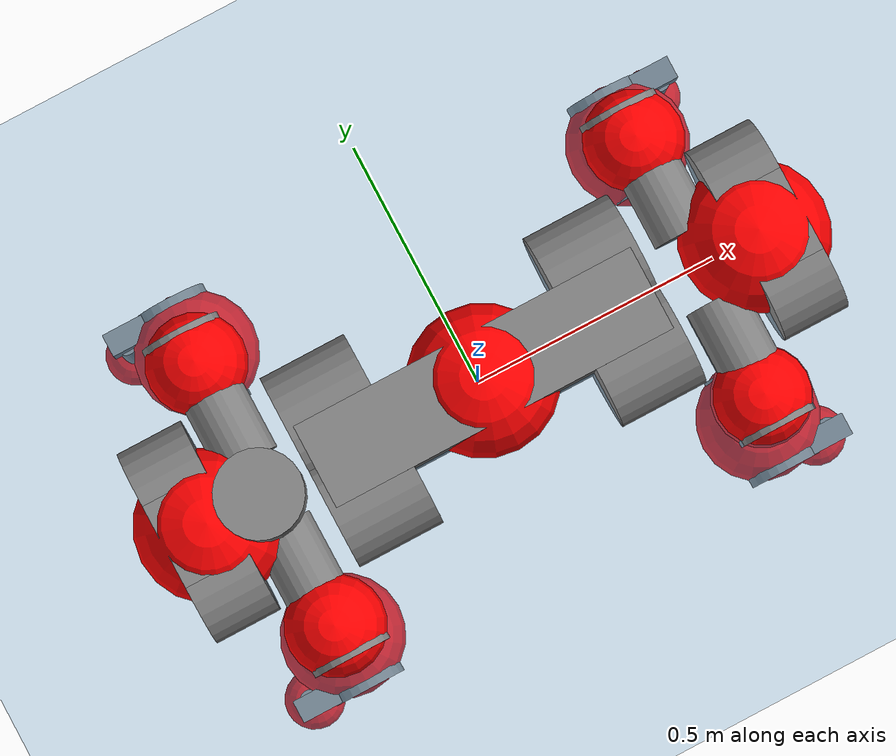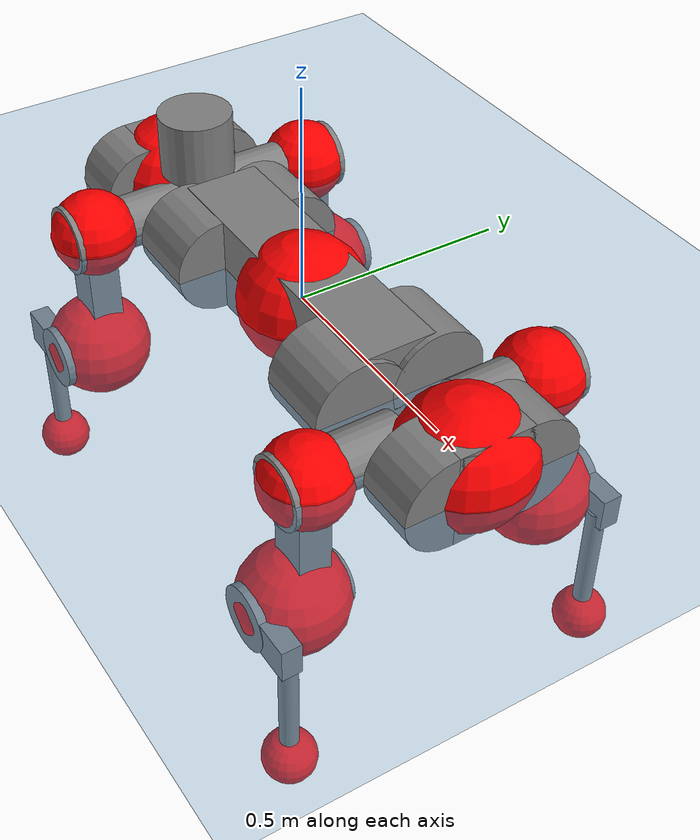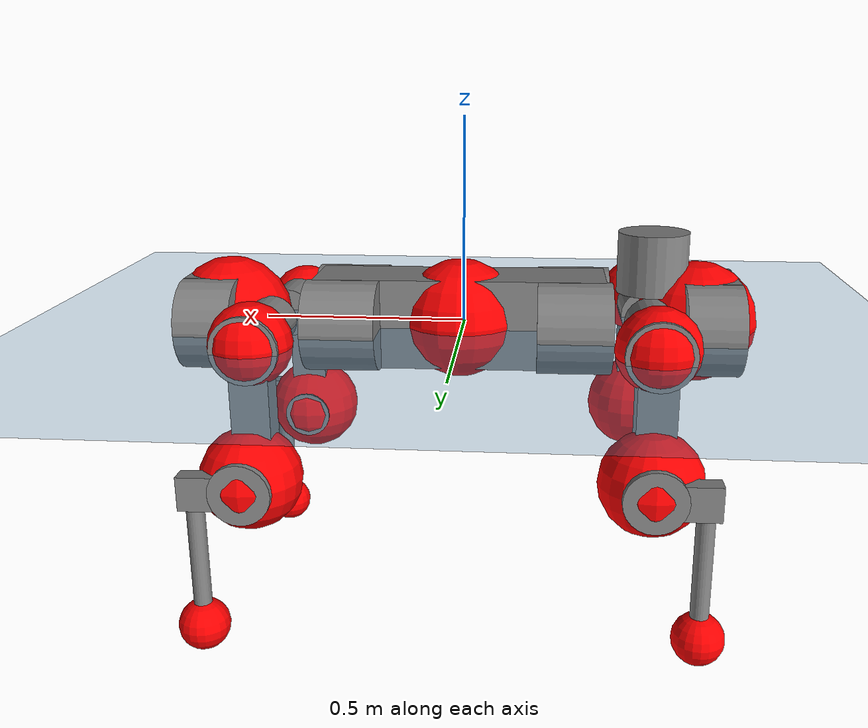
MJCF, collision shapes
<mujoco model="anymal_c">
  <compiler angle="radian" assetdir="assets" balanceinertia="true" inertiafromgeom="false"/>

  <option timestep="0.005" density="1.2" viscosity="2e-05"/>

  <size nkey="1"/>

  <visual>
    <quality shadowsize="8192"/>
    <map shadowclip="0.5"/>
  </visual>

  <default>
    <default class="/">
      <material specular="0" shininess="0.25"/>
      <geom contype="0" conaffinity="0" group="1" solref="-1000 -80"/>
      <site size="0.01 0.005 0.005" group="5"/>
      <general forcelimited="true" forcerange="-80 80" biastype="affine" gainprm="80" biasprm="0 -80 -2"/>
      <default class="anymal_c">
        <joint armature="0.01" damping="0.01" frictionloss="0.1"/>
        <default class="visual">
          <geom type="mesh" group="2"/>
          <default class="visual_zflip"/>
        </default>
        <default class="collision">
          <geom type="cylinder" group="3"/>
          <default class="foot">
            <geom size="0.03 0 0" type="sphere" condim="6" priority="1" friction="0.8 0.02 0.01" solimp="0.015 1 0.03"/>
          </default>
        </default>
      </default>
      <default class="reward_collision_sphere">
        <geom group="5" rgba="1 0 0 1"/>
      </default>
    </default>
  </default>

  <asset>
    <texture type="skybox" colorspace="auto" name="//unnamed_texture_0" builtin="gradient" rgb1="0.95 0.95 0.95" rgb2="0.95 0.95 0.95" width="100" height="600"/>
    <texture type="2d" colorspace="auto" name="texplane" builtin="checker" rgb1="0.345 0.575 0.748" rgb2="0.345 0.575 0.748" markrgb="1 1 1" width="512" height="512"/>
    <texture type="2d" colorspace="linear" name="base" file="base.png"/>
    <texture type="2d" colorspace="linear" name="top_shell" file="top_shell.png"/>
    <texture type="2d" colorspace="linear" name="bottom_shell" file="bottom_shell.png"/>
    <texture type="2d" colorspace="linear" name="remote" file="remote.png"/>
    <texture type="2d" colorspace="linear" name="hatch" file="hatch.png"/>
    <texture type="2d" colorspace="linear" name="handle" file="handle.png"/>
    <texture type="2d" colorspace="linear" name="face" file="face.png"/>
    <texture type="2d" colorspace="linear" name="battery" file="battery.png"/>
    <texture type="2d" colorspace="linear" name="lidar_cage" file="lidar_cage.png"/>
    <texture type="2d" colorspace="linear" name="depth_camera" file="depth_camera.png"/>
    <texture type="2d" colorspace="linear" name="wide_angle_camera" file="wide_angle_camera.png"/>
    <texture type="2d" colorspace="linear" name="lidar" file="lidar.png"/>
    <texture type="2d" colorspace="linear" name="drive" file="drive.png"/>
    <texture type="2d" colorspace="linear" name="hip_l" file="hip_l.png"/>
    <texture type="2d" colorspace="linear" name="shank_l" file="shank_l.png"/>
    <texture type="2d" colorspace="linear" name="foot" file="foot.png"/>
    <texture type="2d" colorspace="linear" name="thigh" file="thigh.png"/>
    <texture type="2d" colorspace="linear" name="shank_r" file="shank_r.png"/>
    <texture type="2d" colorspace="linear" name="hip_r" file="hip_r.png"/>
    <material name="MatPlane" class="/" texture="texplane" texuniform="true" texrepeat="2 2" specular="0.9" shininess="0.5"/>
    <material name="black_plastic" class="/" rgba="0.007 0.007 0.007 1"/>
    <material name="green" class="/" rgba="0.052 0.178 0.033 1"/>
    <material name="red" class="/" rgba="0.178 0.006 0.005 1"/>
    <material name="yellow" class="/" rgba="0.178 0.119 0.006 1"/>
    <material name="lwl" class="/" rgba="0.8 0.8 0.8 1"/>
    <material name="base" class="/" texture="base"/>
    <material name="top_shell" class="/" texture="top_shell"/>
    <material name="bottom_shell" class="/" texture="bottom_shell"/>
    <material name="hip_l" class="/" texture="hip_l"/>
    <material name="thigh" class="/" texture="thigh"/>
    <material name="shank_l" class="/" texture="shank_l"/>
    <material name="foot" class="/" texture="foot"/>
    <material name="hip_r" class="/" texture="hip_r"/>
    <material name="shank" class="/" texture="shank_r"/>
    <material name="hatch" class="/" texture="hatch"/>
    <material name="remote" class="/" texture="remote"/>
    <material name="handle" class="/" texture="handle"/>
    <material name="face" class="/" texture="face"/>
    <material name="depth_camera" class="/" texture="depth_camera"/>
    <material name="wide_angle_camera" class="/" texture="wide_angle_camera"/>
    <material name="battery" class="/" texture="battery"/>
    <material name="lidar_cage" class="/" texture="lidar_cage"/>
    <material name="lidar" class="/" texture="lidar"/>
    <material name="drive" class="/" texture="drive"/>
    <mesh name="base_0" class="/" file="base_0.obj"/>
    <mesh name="base_1" class="/" file="base_1.obj"/>
    <mesh name="base_2" class="/" file="base_2.obj"/>
    <mesh name="base_3" class="/" file="base_3.obj"/>
    <mesh name="base_4" class="/" file="base_4.obj"/>
    <mesh name="base_5" class="/" file="base_5.obj"/>
    <mesh name="top_shell" class="/" file="top_shell.obj"/>
    <mesh name="bottom_shell" class="/" file="bottom_shell.obj"/>
    <mesh name="remote" class="/" file="remote.obj"/>
    <mesh name="handle" class="/" file="handle.obj"/>
    <mesh name="face" class="/" file="face.obj"/>
    <mesh name="wide_angle_camera" class="/" file="wide_angle_camera.obj"/>
    <mesh name="depth_camera" class="/" file="depth_camera.obj"/>
    <mesh name="battery" class="/" file="battery.obj"/>
    <mesh name="lidar_cage" class="/" file="lidar_cage.obj"/>
    <mesh name="lidar" class="/" file="lidar.obj"/>
    <mesh name="drive" class="/" file="drive.obj"/>
    <mesh name="hip_l" class="/" file="hip_l.obj"/>
    <mesh name="thigh" class="/" file="thigh.obj"/>
    <mesh name="shank_l" class="/" file="shank_l.obj"/>
    <mesh name="foot" class="/" file="foot.obj"/>
    <mesh name="hip_r" class="/" file="hip_r.obj"/>
    <mesh name="hatch" class="/" file="hatch.obj"/>
    <mesh name="shank_r" class="/" file="shank_r.obj"/>
  </asset>

  <worldbody>
    <geom name="floor" class="/" size="100 100 0.125" type="plane" group="0" material="MatPlane"/>
    <light name="toplight_shadow" class="/" pos="0 0 5" dir="0.0990148 0.0990148 -0.990148" type="directional" ambient="0.04 0.04 0.04" diffuse="0.55 0.55 0.55" specular="0.12 0.12 0.12"/>
    <light name="toplight_fill" class="/" pos="0 0 5" dir="0.0990148 0.0990148 -0.990148" type="directional" castshadow="false" ambient="0.04 0.04 0.04" diffuse="0.3 0.3 0.3" specular="0.08 0.08 0.08"/>
    <body name="trunk" childclass="anymal_c" pos="0.00939662 -0.00167441 0.00680834" quat="0.999991 0.00313421 0.00246413 0.001284">
      <inertial pos="0.0102205 -0.00730842 0.0530904" quat="0.47998 0.469469 0.53871 0.50893" mass="31.3622" diaginertia="1.70571 2.15159 0.255566"/>
      <joint name="//unnamed_joint_0" type="free" armature="0" damping="0" frictionloss="0"/>
      <geom name="//unnamed_geom_1" class="visual" material="green" mesh="base_0"/>
      <geom name="//unnamed_geom_2" class="visual" material="yellow" mesh="base_1"/>
      <geom name="//unnamed_geom_3" class="visual" material="red" mesh="base_2"/>
      <geom name="//unnamed_geom_4" class="visual" material="black_plastic" mesh="base_3"/>
      <geom name="//unnamed_geom_5" class="visual" material="lwl" mesh="base_4"/>
      <geom name="//unnamed_geom_6" class="visual" material="base" mesh="base_5"/>
      <geom name="trunk_1" class="collision" size="0.355758 0.0858726 0.110408" type="box"/>
      <geom name="trunk_2" class="collision" size="0.110408 0.0889395" pos="0.280428 0.0905865 0" quat="0.707107 0 0.707107 0"/>
      <geom name="trunk_3" class="collision" size="0.110408 0.0889395" pos="-0.280428 0.0905865 0" quat="0.707107 0 0.707107 0"/>
      <geom name="trunk_4" class="collision" size="0.110408 0.0889395" pos="0.280428 -0.0905865 0" quat="0.707107 0 0.707107 0"/>
      <geom name="trunk_5" class="collision" size="0.110408 0.0889395" pos="-0.280428 -0.0905865 0" quat="0.707107 0 0.707107 0"/>
      <geom name="//unnamed_geom_12" class="visual" material="top_shell" mesh="top_shell"/>
      <geom name="//unnamed_geom_13" class="visual" material="bottom_shell" mesh="bottom_shell"/>
      <geom name="//unnamed_geom_14" class="visual" material="remote" mesh="remote"/>
      <geom name="//unnamed_geom_15" class="visual" material="handle" mesh="handle"/>
      <geom name="//unnamed_geom_16" class="visual" pos="0.534425 0 0" quat="1 0 0 0" material="face" mesh="face"/>
      <geom name="trunk_6" class="collision" size="0.0674714 0.0858726 0.110408" pos="0.605338 0 0" type="box"/>
      <geom name="//unnamed_geom_18" class="collision" size="0.110408 0.0674714" pos="0.605338 0.0905865 0" quat="0.707107 0 0.707107 0"/>
      <geom name="//unnamed_geom_19" class="collision" size="0.110408 0.0674714" pos="0.605338 -0.0905865 0" quat="0.707107 0 0.707107 0"/>
      <geom name="//unnamed_geom_20" class="visual" pos="0.595208 0 -0.0305648" quat="0.965926 0 0.258819 0" material="depth_camera" mesh="depth_camera"/>
      <geom name="//unnamed_geom_21" class="visual" pos="0.661423 0 0.0164197" material="wide_angle_camera" mesh="wide_angle_camera"/>
      <geom name="//unnamed_geom_22" class="visual_zflip" pos="-0.534425 0 0" quat="0 0 0 1" material="face" mesh="face"/>
      <geom name="trunk_7" class="collision" size="0.0674714 0.0858726 0.110408" pos="-0.605338 0 0" quat="0 0 0 1" type="box"/>
      <geom name="//unnamed_geom_24" class="collision" size="0.110408 0.0674714" pos="-0.605338 -0.0905865 0" quat="0 -0.707107 0 0.707107"/>
      <geom name="//unnamed_geom_25" class="collision" size="0.110408 0.0674714" pos="-0.605338 0.0905865 0" quat="0 -0.707107 0 0.707107"/>
      <geom name="//unnamed_geom_26" class="visual" pos="-0.595208 0 -0.0305648" quat="0 -0.258819 0 0.965926" material="depth_camera" mesh="depth_camera"/>
      <geom name="//unnamed_geom_27" class="visual_zflip" pos="-0.661423 0 0.0164197" quat="0 0 0 1" material="wide_angle_camera" mesh="wide_angle_camera"/>
      <geom name="//unnamed_geom_28" class="visual" material="battery" mesh="battery"/>
      <geom name="//unnamed_geom_29" class="visual" pos="0 0.099001 0.033326" quat="0.683013 -0.183013 0.183013 0.683013" material="depth_camera" mesh="depth_camera"/>
      <geom name="//unnamed_geom_30" class="visual" pos="0 -0.099001 0.033326" quat="0.683013 0.183013 0.183013 -0.683013" material="depth_camera" mesh="depth_camera"/>
      <geom name="//unnamed_geom_31" class="visual" pos="-0.469314 0 0.0806176" quat="1 0 0 0" material="lidar_cage" mesh="lidar_cage"/>
      <geom name="trunk_8" class="collision" size="0.0858726 0.0736051" pos="-0.469314 0 0.146428"/>
      <geom name="//unnamed_geom_33" class="visual" pos="-0.469314 1.87389e-06 0.15597" quat="0.707107 0 0 -0.707107" material="lidar" mesh="lidar"/>
      <geom name="//unnamed_geom_34" class="visual" pos="0.386668 0.134516 3.40267e-09" quat="0.258819 0.965926 0 0" material="drive" mesh="drive"/>
      <geom name="//unnamed_geom_35" class="visual" pos="0.386668 -0.134516 -3.40267e-09" quat="0.258819 -0.965926 0 0" material="drive" mesh="drive"/>
      <geom name="//unnamed_geom_36" class="visual" pos="-0.386668 0.134516 -3.40267e-09" quat="0 0 0.965926 -0.258819" material="drive" mesh="drive"/>
      <geom name="//unnamed_geom_37" class="visual" pos="-0.386668 -0.134516 3.40267e-09" quat="0 0 -0.965926 -0.258819" material="drive" mesh="drive"/>
      <geom name="//unnamed_geom_38" class="visual" pos="0.149562 0 0.0800692" quat="1 0 0 0" material="hatch" mesh="hatch"/>
      <geom name="//unnamed_geom_39" class="reward_collision_sphere" size="0.14721"/>
      <geom name="//unnamed_geom_40" class="reward_collision_sphere" size="0.14721" pos="0.580196 0 0"/>
      <geom name="//unnamed_geom_41" class="reward_collision_sphere" size="0.14721" pos="-0.580196 0 0"/>
      <site name="imu" pos="0.283718 0.0840309 0.0754611" size="0.0122675"/>
      <camera name="track" pos="0 -2.58819 0" quat="0.707107 0.707107 0 0" mode="trackcom"/>
      <camera name="ego_camera" pos="0.580196 0 -0.0438735" quat="-0.5 -0.5 0.5 0.5"/>
      <body name="LF_HIP" pos="0.38717 0.134413 0.00510222" quat="0.252114 0.967696 -0.000598618 -0.00148409">
        <inertial pos="0.0800352 -0.0198331 -0.00546549" quat="-0.139053 0.708985 -0.180521 0.667395" mass="4.28546" diaginertia="0.0176242 0.0152163 0.00400349"/>
        <joint name="LF_HAA" pos="0 0 0" axis="0.999325 0.0177157 -0.0321823" range="-0.970789 0.452397" armature="0.00572308" damping="0.0104865" frictionloss="0.13389"/>
        <geom name="//unnamed_geom_42" class="visual" pos="0 0.000200164 -3.28767e-05" quat="0.258819 -0.965926 0 0" material="hip_l" mesh="hip_l"/>
        <geom name="//unnamed_geom_43" class="visual" pos="0.0772305 -0.0935739 -0.0525659" quat="0.183013 -0.683013 0.683013 0.183013" material="drive" mesh="drive"/>
        <geom name="//unnamed_geom_44" class="collision" size="0.0613376 0.0858726" pos="0.0772305 -0.0154771 -0.00757367" quat="-0.353553 -0.612372 0.612372 -0.353553"/>
        <body name="LF_THIGH" pos="0.077281 -0.0911103 -0.043036" quat="0.183179 -0.682672 0.683247 0.183245">
          <inertial pos="0.0396766 0.0127353 -0.254792" quat="0.99214 0.00595689 -0.0963093 0.0796698" mass="5.82604" diaginertia="0.104885 0.118406 0.00643754"/>
          <joint name="LF_HFE" pos="0 0 0" axis="0.99993 -0.00756419 0.00906814" range="-3.13053 2.85944" armature="0.0169384" damping="0.0796556" frictionloss="0.120444"/>
          <geom name="//unnamed_geom_45" class="visual" pos="-9.48984e-05 -1.49538e-07 0" quat="0.707107 0 0 -0.707107" material="thigh" mesh="thigh"/>
          <geom name="//unnamed_geom_46" class="collision" size="0.0797389 0.0490701" pos="0.051573 0 0" quat="0.5 0.5 -0.5 -0.5"/>
          <geom name="//unnamed_geom_47" class="collision" size="0.0460032 0.0368026 0.173357" pos="0.0386797 0 -0.154999" quat="0.707107 0 0 -0.707107" type="box"/>
          <geom name="//unnamed_geom_48" class="visual" pos="0.129319 0 -0.312599" quat="1 0 0 0" material="drive" mesh="drive"/>
          <geom name="//unnamed_geom_49" class="collision" size="0.0613376 0.0858726" pos="0.0390665 0 -0.312599" quat="0.707107 0 0.707107 0"/>
          <geom name="//unnamed_geom_50" class="reward_collision_sphere" size="0.0981402" pos="0.0322331 0 0"/>
          <body name="LF_SHANK" pos="0.114525 -0.0134631 -0.321665" quat="1 0.000357267 8.53372e-05 0.000381302">
            <inertial pos="0.0110937 -0.0718542 -0.0974042" quat="0.993442 -0.110898 -0.00380211 -0.0275851" mass="0.924232" diaginertia="0.0324172 0.0351546 0.00182126"/>
            <joint name="LF_KFE" pos="0 0 0" axis="0.999904 -0.0134889 -0.00328574" stiffness="0.0699803" range="-3.31626 3.3757" armature="0.0130438" damping="0.0215979" frictionloss="0.131"/>
            <geom name="//unnamed_geom_51" class="visual" pos="-3.09443e-05 -0.000164997 0" quat="0.707107 0 0 -0.707107" material="shank_l" mesh="shank_l"/>
            <geom name="LF_kfe_act" class="collision" size="0.0736051 0.024535" pos="0.0257865 0 0" quat="0.5 0.5 -0.5 -0.5"/>
            <geom name="//unnamed_geom_53" class="collision" size="0.070537 0.0414029 0.0233083" pos="0.0257865 -0.0744091 0" quat="0.5 0.5 -0.5 -0.5" type="box"/>
            <geom name="//unnamed_geom_54" class="visual" pos="0.0168257 -0.113869 -0.370699" quat="0.382683 0 0 -0.92388" material="foot" mesh="foot"/>
            <geom name="LF_calf" class="collision" size="0.0214682 0.173281" pos="0.0168257 -0.113816 -0.185349" quat="0.707107 0 0 -0.707107"/>
            <geom name="LF_foot" class="foot" size="0.0550092" pos="0.0168257 -0.113816 -0.34602" quat="0.707107 0 0 -0.707107"/>
            <geom name="//unnamed_geom_57" class="reward_collision_sphere" size="0.122675" pos="-0.0644662 0 0"/>
            <geom name="//unnamed_geom_58" class="reward_collision_sphere" size="0.0613376" pos="0.0168257 -0.113816 -0.34602"/>
            <site name="LF_foot" class="foot" pos="0.0168257 -0.113816 -0.34602" quat="0.707107 0 0 -0.707107" size="0.0122675"/>
          </body>
        </body>
      </body>
      <body name="RF_HIP" pos="0.380158 -0.141504 -0.013074" quat="0.25879 -0.965934 1.7937e-05 3.03699e-05">
        <inertial pos="0.0768105 0.0287485 -0.0085756" quat="0.133152 0.631854 0.127832 0.752788" mass="4.21739" diaginertia="0.0189545 0.0138533 0.00423256"/>
        <joint name="RF_HAA" pos="0 0 0" axis="0.999991 0.0012405 -0.00407936" range="-0.684033 0.712895" armature="0.0125035" damping="0.0129446" frictionloss="0.0942697"/>
        <geom name="//unnamed_geom_59" class="visual" pos="0 -0.000200162 -3.28766e-05" quat="0.258819 0.965926 0 0" material="hip_r" mesh="hip_r"/>
        <geom name="//unnamed_geom_60" class="visual" pos="0.0772305 0.0935739 -0.0525659" quat="0.183013 0.683013 0.683013 -0.183013" material="drive" mesh="drive"/>
        <geom name="//unnamed_geom_61" class="collision" size="0.0613376 0.0858726" pos="0.0772305 0.0154771 -0.00757367" quat="-0.353553 0.612372 0.612372 0.353553"/>
        <body name="RF_THIGH" pos="0.0708576 0.0931877 -0.0354711" quat="0.183401 0.684116 0.682244 -0.181364">
          <inertial pos="0.0387955 -0.000307727 -0.256113" quat="0.996226 0.0306517 -0.0777651 0.0233964" mass="4.49134" diaginertia="0.0981072 0.09121 0.00558533"/>
          <joint name="RF_HFE" pos="0 0 0" axis="0.999869 0.0121346 0.0106796" stiffness="0.0165428" range="-2.87874 2.92986" armature="0.0182174" damping="0.0119059" frictionloss="0.104484"/>
          <geom name="//unnamed_geom_62" class="visual" pos="-9.48984e-05 -1.49538e-07 0" quat="0.707107 0 0 -0.707107" material="thigh" mesh="thigh"/>
          <geom name="//unnamed_geom_63" class="collision" size="0.0797389 0.0490701" pos="0.051573 0 0" quat="0.5 0.5 0.5 0.5"/>
          <geom name="//unnamed_geom_64" class="collision" size="0.0460032 0.0368026 0.173357" pos="0.0386797 0 -0.154999" quat="0.707107 0 0 0.707107" type="box"/>
          <geom name="//unnamed_geom_65" class="visual" pos="0.129319 0 -0.312599" quat="1 0 0 0" material="drive" mesh="drive"/>
          <geom name="//unnamed_geom_66" class="collision" size="0.0613376 0.0858726" pos="0.0390665 0 -0.312599" quat="0.707107 0 0.707107 0"/>
          <geom name="//unnamed_geom_67" class="reward_collision_sphere" size="0.0981402" pos="0.0322331 0 0"/>
          <body name="RF_SHANK" pos="0.127757 -0.000555716 -0.312597" quat="1 -8.08935e-05 5.55314e-05 -8.66465e-05">
            <inertial pos="0.00461098 0.0799476 -0.103461" quat="0.988699 0.149374 0.00208112 0.0125268" mass="1.4549" diaginertia="0.0399774 0.0326234 0.00243603"/>
            <joint name="RF_KFE" pos="0 0 0" axis="0.999776 0.0208892 0.0032983" range="-3.11773 3.2821" armature="0.00631771" damping="0.00684836" frictionloss="0.124672"/>
            <geom name="//unnamed_geom_68" class="visual" pos="-3.09441e-05 0.000164996 0" quat="0.707107 0 0 0.707107" material="shank" mesh="shank_r"/>
            <geom name="RF_kfe_act" class="collision" size="0.0736051 0.024535" pos="0.0257865 0 0" quat="0.5 0.5 0.5 0.5"/>
            <geom name="//unnamed_geom_70" class="collision" size="0.070537 0.0414029 0.0233083" pos="0.0257865 0.0744091 0" quat="0.5 0.5 0.5 0.5" type="box"/>
            <geom name="//unnamed_geom_71" class="visual" pos="0.0168257 0.113869 -0.370699" quat="0.382683 0 0 0.92388" material="foot" mesh="foot"/>
            <geom name="RF_calf" class="collision" size="0.0214682 0.173281" pos="0.0168257 0.113816 -0.185349" quat="0.707107 0 0 0.707107"/>
            <geom name="RF_foot" class="foot" size="0.0304195" pos="0.0168257 0.113816 -0.34602" quat="0.707107 0 0 0.707107"/>
            <geom name="//unnamed_geom_74" class="reward_collision_sphere" size="0.122675" pos="-0.0644662 0 0"/>
            <geom name="//unnamed_geom_75" class="reward_collision_sphere" size="0.0613376" pos="0.0168257 0.113816 -0.34602"/>
            <site name="RF_foot" class="foot" pos="0.0168257 0.113816 -0.34602" quat="0.707107 0 0 0.707107" size="0.0122675"/>
          </body>
        </body>
      </body>
      <body name="LH_HIP" pos="-0.384279 0.141059 0.0126705" quat="-0.00012508 -0.000357696 0.965759 -0.25944">
        <inertial pos="0.0742809 0.0202791 0.00333133" quat="0.137795 0.683268 0.123676 0.706301" mass="4.4035" diaginertia="0.0181338 0.0201505 0.00527216"/>
        <joint name="LH_HAA" pos="0 0 0" axis="0.999995 -0.00139109 0.00288902" range="-0.775373 0.47358" armature="0.0120229" damping="0.0484682" frictionloss="0.0472346"/>
        <geom name="//unnamed_geom_76" class="visual" pos="0 -0.000200162 -3.28766e-05" quat="-0.258819 -0.965926 0 0" material="hip_r" mesh="hip_r"/>
        <geom name="//unnamed_geom_77" class="visual" pos="0.0772305 0.0935739 -0.0525659" quat="0.183013 0.683013 0.683013 -0.183013" material="drive" mesh="drive"/>
        <geom name="//unnamed_geom_78" class="collision" size="0.0613376 0.0858726" pos="0.0772305 0.0154771 -0.00757367" quat="-0.353553 0.612372 0.612372 0.353553"/>
        <body name="LH_THIGH" pos="0.0768406 0.0973256 -0.0474281" quat="0.183059 0.683199 0.682794 -0.183087">
          <inertial pos="0.0517148 -0.00201016 -0.254903" quat="0.996913 0.0172036 -0.026882 0.0717313" mass="5.41785" diaginertia="0.116475 0.101449 0.00713373"/>
          <joint name="LH_HFE" pos="0 0 0" axis="0.998218 0.0137924 -0.0580564" stiffness="0.0221311" range="-2.89531 3.19" armature="0.00912456" damping="0" frictionloss="0.117207"/>
          <geom name="//unnamed_geom_79" class="visual" pos="-9.48984e-05 -1.49538e-07 0" quat="0.707107 0 0 -0.707107" material="thigh" mesh="thigh"/>
          <geom name="//unnamed_geom_80" class="collision" size="0.0797389 0.0490701" pos="0.051573 0 0" quat="0.5 0.5 -0.5 -0.5"/>
          <geom name="//unnamed_geom_81" class="collision" size="0.0460032 0.0368026 0.173357" pos="0.0386797 0 -0.154999" quat="0.707107 0 0 -0.707107" type="box"/>
          <geom name="//unnamed_geom_82" class="visual" pos="0.129319 0 -0.312599" quat="1 0 0 0" material="drive" mesh="drive"/>
          <geom name="//unnamed_geom_83" class="collision" size="0.0613376 0.0858726" pos="0.0390665 0 -0.312599" quat="0.707107 0 0.707107 0"/>
          <geom name="//unnamed_geom_84" class="reward_collision_sphere" size="0.0981402" pos="0.0322331 0 0"/>
          <body name="LH_SHANK" pos="0.13733 -0.00584472 -0.302727" quat="1 -2.05902e-05 -6.52227e-05 3.46506e-05">
            <inertial pos="-0.000505692 0.0872491 -0.0972307" quat="0.99177 0.107577 -0.0466492 0.0514218" mass="1.23877" diaginertia="0.0361807 0.0317163 0.00191103"/>
            <joint name="LH_KFE" pos="0 0 0" axis="0.999391 0.01293 -0.0324166" stiffness="0.0734523" range="-3.23301 3.12912" armature="0.0106891" damping="0.00403854" frictionloss="0.0750725"/>
            <geom name="//unnamed_geom_85" class="visual" pos="-3.09441e-05 0.000164996 0" quat="-0.707107 0 0 -0.707107" material="shank" mesh="shank_r"/>
            <geom name="LH_kfe_act" class="collision" size="0.0736051 0.024535" pos="0.0257865 0 0" quat="0.5 0.5 -0.5 -0.5"/>
            <geom name="//unnamed_geom_87" class="collision" size="0.070537 0.0414029 0.0233083" pos="0.0257865 0.0744091 0" quat="0.5 0.5 -0.5 -0.5" type="box"/>
            <geom name="//unnamed_geom_88" class="visual" pos="0.0168257 0.113869 -0.370699" quat="-0.382683 0 0 -0.92388" material="foot" mesh="foot"/>
            <geom name="LH_calf" class="collision" size="0.0214682 0.173281" pos="0.0168257 0.113816 -0.185349" quat="0.707107 0 0 -0.707107"/>
            <geom name="LH_foot" class="foot" size="0.0296712" pos="0.0168257 0.113816 -0.34602" quat="0.707107 0 0 -0.707107"/>
            <geom name="//unnamed_geom_91" class="reward_collision_sphere" size="0.122675" pos="-0.0644662 0 0"/>
            <geom name="//unnamed_geom_92" class="reward_collision_sphere" size="0.0613376" pos="0.0168257 0.113816 -0.34602"/>
            <site name="LH_foot" class="foot" pos="0.0168257 0.113816 -0.34602" quat="0.707107 0 0 -0.707107" size="0.0122675"/>
          </body>
        </body>
      </body>
      <body name="RH_HIP" pos="-0.387218 -0.130513 -0.00311387" quat="-0.000125685 0.00210335 -0.965538 -0.260252">
        <inertial pos="0.073733 -0.0318894 0.00026372" quat="-0.12721 0.710036 -0.134597 0.679375" mass="5.5819" diaginertia="0.0251715 0.0216312 0.00619381"/>
        <joint name="RH_HAA" pos="0 0 0" axis="0.999756 0.0204037 0.00844096" stiffness="0.00744032" range="-0.822562 0.70482" armature="0.016408" damping="0.063719" frictionloss="0.0924551"/>
        <geom name="//unnamed_geom_93" class="visual" pos="0 0.000200164 -3.28767e-05" quat="-0.258819 0.965926 0 0" material="hip_l" mesh="hip_l"/>
        <geom name="//unnamed_geom_94" class="visual" pos="0.0772305 -0.0935739 -0.0525659" quat="-0.183013 0.683013 -0.683013 -0.183013" material="drive" mesh="drive"/>
        <geom name="//unnamed_geom_95" class="collision" size="0.0613376 0.0858726" pos="0.0772305 -0.0154771 -0.00757367" quat="0.353553 0.612372 -0.612372 0.353553"/>
        <body name="RH_THIGH" pos="0.0747567 -0.0969477 -0.0589748" quat="-0.183585 0.682968 -0.682772 -0.183505">
          <inertial pos="0.047938 -0.00939614 -0.269748" quat="0.993697 -0.00667587 -0.0763605 0.0817965" mass="7.32023" diaginertia="0.113044 0.124666 0.00653666"/>
          <joint name="RH_HFE" pos="0 0 0" axis="0.999686 0.0185531 0.0168452" range="-2.87948 2.89618" armature="0.0121226" damping="0.000356285" frictionloss="0.190375"/>
          <geom name="//unnamed_geom_96" class="visual" pos="-9.48984e-05 -1.49538e-07 0" quat="0.707107 0 0 -0.707107" material="thigh" mesh="thigh"/>
          <geom name="//unnamed_geom_97" class="collision" size="0.0797389 0.0490701" pos="0.051573 0 0" quat="0.5 0.5 0.5 0.5"/>
          <geom name="//unnamed_geom_98" class="collision" size="0.0460032 0.0368026 0.173357" pos="0.0386797 0 -0.154999" quat="0.707107 0 0 0.707107" type="box"/>
          <geom name="//unnamed_geom_99" class="visual" pos="0.129319 0 -0.312599" quat="1 0 0 0" material="drive" mesh="drive"/>
          <geom name="//unnamed_geom_100" class="collision" size="0.0613376 0.0858726" pos="0.0390665 0 -0.312599" quat="0.707107 0 0.707107 0"/>
          <geom name="//unnamed_geom_101" class="reward_collision_sphere" size="0.0981402" pos="0.0322331 0 0"/>
          <body name="RH_SHANK" pos="0.116012 -0.00190416 -0.313419" quat="0.999999 -0.000913894 -4.8163e-05 -0.000441184">
            <inertial pos="0.00228663 -0.0793951 -0.0899382" quat="0.992453 -0.120565 0.00586553 -0.0216148" mass="1.3558" diaginertia="0.0416178 0.0375286 0.00196716"/>
            <joint name="RH_KFE" pos="0 0 0" axis="0.99933 0.0318117 0.0180727" stiffness="0.0367064" range="-3.10725 2.98615" armature="0.0158295" damping="0.0717272" frictionloss="0.117158"/>
            <geom name="//unnamed_geom_102" class="visual" pos="-3.09443e-05 -0.000164997 0" quat="0.707107 0 0 -0.707107" material="shank_l" mesh="shank_l"/>
            <geom name="RH_kfe_act" class="collision" size="0.0736051 0.024535" pos="0.0257865 0 0" quat="0.5 0.5 0.5 0.5"/>
            <geom name="//unnamed_geom_104" class="collision" size="0.070537 0.0414029 0.0233083" pos="0.0257865 -0.0744091 0" quat="0.5 0.5 0.5 0.5" type="box"/>
            <geom name="//unnamed_geom_105" class="visual" pos="0.0168257 -0.113869 -0.370699" quat="0.382683 0 0 -0.92388" material="foot" mesh="foot"/>
            <geom name="RH_calf" class="collision" size="0.0214682 0.173281" pos="0.0168257 -0.113816 -0.185349" quat="0.707107 0 0 0.707107"/>
            <geom name="RH_foot" class="foot" size="0.040367" pos="0.0168257 -0.113816 -0.34602" quat="0.707107 0 0 0.707107"/>
            <geom name="//unnamed_geom_108" class="reward_collision_sphere" size="0.122675" pos="-0.0644662 0 0"/>
            <geom name="//unnamed_geom_109" class="reward_collision_sphere" size="0.0613376" pos="0.0168257 -0.113816 -0.34602"/>
            <site name="RH_foot" class="foot" pos="0.0168257 -0.113816 -0.34602" quat="0.707107 0 0 0.707107" size="0.0122675"/>
          </body>
        </body>
      </body>
    </body>
  </worldbody>

  <contact>
    <pair class="/" geom1="floor" geom2="LF_foot" name="//unnamed_contact_0"/>
    <pair class="/" geom1="floor" geom2="RF_foot" name="//unnamed_contact_1"/>
    <pair class="/" geom1="floor" geom2="LH_foot" name="//unnamed_contact_2"/>
    <pair class="/" geom1="floor" geom2="RH_foot" name="//unnamed_contact_3"/>
  </contact>

  <actuator>
    <general name="LF_HAA" class="/" joint="LF_HAA" forcerange="-90.2302 90.2302" gainprm="109.3" biasprm="0 -109.3 -1.72275"/>
    <general name="LF_HFE" class="/" joint="LF_HFE" forcerange="-56.4606 56.4606" gainprm="109.3" biasprm="0 -109.3 -1.72275"/>
    <general name="LF_KFE" class="/" joint="LF_KFE" forcerange="-143.949 143.949" gainprm="109.3" biasprm="0 -109.3 -1.72275"/>
    <general name="RF_HAA" class="/" joint="RF_HAA" forcerange="-96.0285 96.0285" gainprm="109.3" biasprm="0 -109.3 -1.72275"/>
    <general name="RF_HFE" class="/" joint="RF_HFE" forcerange="-68.6735 68.6735" gainprm="109.3" biasprm="0 -109.3 -1.72275"/>
    <general name="RF_KFE" class="/" joint="RF_KFE" forcerange="-42.8337 42.8337" gainprm="109.3" biasprm="0 -109.3 -1.72275"/>
    <general name="LH_HAA" class="/" joint="LH_HAA" forcerange="-51.7122 51.7122" gainprm="109.3" biasprm="0 -109.3 -1.72275"/>
    <general name="LH_HFE" class="/" joint="LH_HFE" forcerange="-74.3274 74.3274" gainprm="109.3" biasprm="0 -109.3 -1.72275"/>
    <general name="LH_KFE" class="/" joint="LH_KFE" forcerange="-103.605 103.605" gainprm="109.3" biasprm="0 -109.3 -1.72275"/>
    <general name="RH_HAA" class="/" joint="RH_HAA" forcerange="-98.6255 98.6255" gainprm="109.3" biasprm="0 -109.3 -1.72275"/>
    <general name="RH_HFE" class="/" joint="RH_HFE" forcerange="-150.682 150.682" gainprm="109.3" biasprm="0 -109.3 -1.72275"/>
    <general name="RH_KFE" class="/" joint="RH_KFE" forcerange="-137.382 137.382" gainprm="109.3" biasprm="0 -109.3 -1.72275"/>
  </actuator>

  <sensor>
    <gyro site="imu" name="imu_angular_velocity"/>
    <velocimeter site="imu" name="imu_linear_velocity"/>
    <framelinvel objtype="site" objname="LF_foot" name="LF_foot_global_linear_velocity"/>
    <framelinvel objtype="site" objname="RF_foot" name="RF_foot_global_linear_velocity"/>
    <framelinvel objtype="site" objname="LH_foot" name="LH_foot_global_linear_velocity"/>
    <framelinvel objtype="site" objname="RH_foot" name="RH_foot_global_linear_velocity"/>
  </sensor>

  <keyframe>
    <key name="home" qpos="0 0 0.55 1 0 0 0 0 0.4 -0.8 0 -0.4 0.8 0 -0.4 0.8 0 0.4 -0.8"/>
  </keyframe>
</mujoco>
